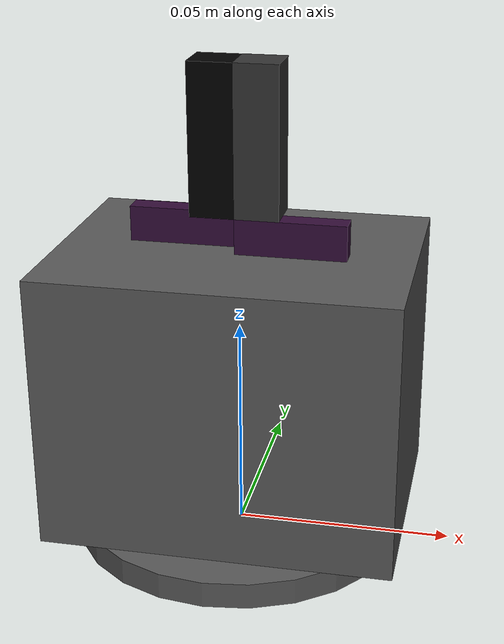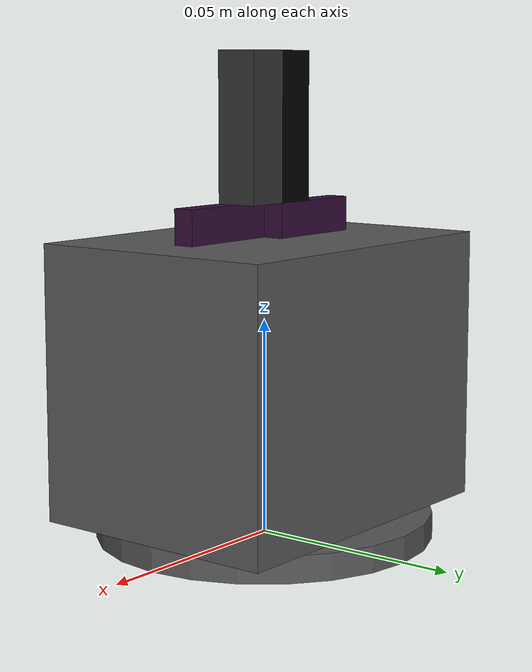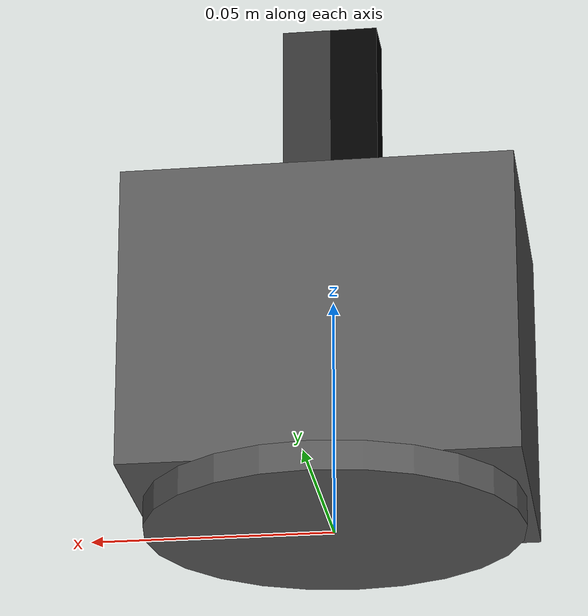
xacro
<?xml version="1.0"?>
<robot xmlns:xacro="http://www.ros.org/wiki/xacro"
       name="gripper" >
  <!-- Include all igus_rebel_6dof macros -->
  <!-- this is designed to be put together inside irc_ros_description packges. change package name as required -->
  <xacro:include filename="$(find irc_ros_description)/urdf/grippers/gripper.urdf" />
  <xacro:include filename="$(find irc_ros_description)/urdf/grippers/gripper.ros2_control.xacro" />
  <xacro:macro name="gripper" params="parent_link hardware_protocol is_ignition">
    <xacro:gripper_controller hardware_protocol="${hardware_protocol}" is_ignition="${is_ignition}" />
    <joint name="gripper_world_base" type="fixed">
      <parent link="flange"/>
      <child link="gripper_base_link"/>
      <origin xyz="0 0 0" rpy="0.0 1.57 0.0"/>
  </joint>
  </xacro:macro>
</robot>

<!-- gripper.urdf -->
<robot name="gripper">
<!-- the orange axis is x axis, yellow is y and cyan is z axis -->
    <material name="body_color">
        <color rgba="0.3451 0.3451 0.3451 1.0"/>
    </material>
    <material name="finger_color">
        <color rgba="0.0 0.0 0.0 1.0"/>
    </material>
    <material name="finger_base_color">
        <color rgba="0.2 0.05098039 0.21960784 1.0"/>
    </material>
    <link name="gripper_base_link">
        <visual>
            <geometry>
                <cylinder radius="0.039" length="0.006"/>
            </geometry>
            <origin rpy = "0 0 0 " xyz="0 0 0.003"/>
            <material name="body_color"/>
        </visual>
        <collision>
            <geometry>
                <cylinder radius="0.039" length="0.006"/>
            </geometry>
            <origin rpy = "0 0 0 " xyz="0 0 0"/>
        </collision>
        <inertial>
            <origin xyz="0.0 0.0 0.0" rpy="0.0 0.0 0.0"/>
            <mass value="0.04"/>
            <inertia ixx="1.533e-05" ixy="0.0" ixz="0.0" iyy="1.533e-05" iyz="0.0" izz="3.042e-05"/>
        </inertial>
    </link>

    <joint name="gripper_base" type="fixed">
        <parent link="gripper_base_link"/>
        <child link="gripper_first_link"/>
        <origin xyz="0 0 0.006"/>
        <axis xyz="0 0 0"/>
        <limit lower="-1.2" upper="1.2" effort="300" velocity="2.0"/>
    </joint>

    <link name="gripper_first_link">
        <visual>
            <geometry>
                <box size="0.08 0.06 0.063"/>
            </geometry>
            <origin rpy="0 0 0" xyz="0 0 0.0315"/>
            <material name="body_color"/>
        </visual>
        <collision>
            <geometry>
                <box size="0.08 0.06 0.069"/>
            </geometry>
            <origin rpy="0 0 0" xyz="0 0 0.0345"/>
        </collision>
        <inertial>
            <origin xyz="0.0 0.0 0.0" rpy="0.0 0.0 0.0"/>
            <mass value="0.32"/>
            <inertia ixx="0.0002765066666666667" ixy="0.0" ixz="0.0" iyy="0.00020184" iyz="0.0" izz="0.0002666666666666667"/>
        </inertial>
    </link>

    <joint name="right_finger_base_joint" type="prismatic">
        <parent link="gripper_first_link"/>
        <child link="right_finger_base"/>
        <origin xyz="0 0 0.063"/>
        <axis xyz="1 0 0"/>
        <limit lower="0.0" upper="0.03" effort="300" velocity="2.0"/>
    </joint>

    <joint name="left_finger_base_joint" type="prismatic">
        <mimic joint="right_finger_base_joint" multiplier="1" offset="0"/>
        <parent link="gripper_first_link"/>
        <child link="left_finger_base"/>
        <origin xyz="0.0 0.0 0.063"/>
        <axis xyz="-1 0 0"/>
        <limit lower="0.0" upper="0.03" effort="300" velocity="2.0"/>
    </joint>

    <link name="right_finger_base">
        <visual>
            <geometry>
                <box size="0.025 0.005 0.008"/>
            </geometry>
            <origin rpy="0 0 0" xyz="-0.0125 0.0025 0.004"/>
            <material name="finger_base_color"/>
        </visual>
        <collision>
            <geometry>
                <box size="0.025 0.005 0.008"/>
            </geometry>
            <origin rpy="0 0 0" xyz="-0.0125 0.0025 0.004"/>
        </collision>
        <inertial>
            <origin xyz="0.0 0.0 0.0" rpy="0.0 0.0 0.0"/>
            <mass value="0.005"/>
            <inertia ixx="2.870833333333334e-07" ixy="0.0" ixz="0.0" iyy="3.708333333333333e-08" iyz="0.0" izz="2.7083333333333337e-07"/>
        </inertial>
    </link>

    <link name="left_finger_base">
        <visual>
            <geometry>
                <box size="0.025 0.005 0.008"/>
            </geometry>
            <origin rpy="0 0 0" xyz="0.0125 -0.0025 0.004"/>
            <material name="finger_base_color"/>
        </visual>
        <collision>
            <geometry>
                <box size="0.025 0.005  0.008"/>
            </geometry>
            <origin rpy="0 0 0" xyz="0.0125 -0.0025 0.004"/>
        </collision>
        <inertial>
            <origin xyz="0.0 0.0 0.0" rpy="0.0 0.0 0.0"/>
            <mass value="0.005"/>
            <inertia ixx="2.870833333333334e-07" ixy="0.0" ixz="0.0" iyy="3.708333333333333e-08" iyz="0.0" izz="2.7083333333333337e-07"/>
        </inertial>
    </link>
    <!-- might need to modify the axis of translation -->
    <joint name="right_finger_joint" type="fixed">
        <parent link="right_finger_base"/>
        <child link="right_finger"/>
        <origin rpy="0 0 0" xyz="0 0 0.008"/>
        <axis xyz="0 0 0"/>
    </joint>

    <joint name="left_finger_joint" type="fixed">
        <parent link="left_finger_base"/>
        <child link="left_finger"/>
        <origin rpy="0 0 0" xyz="0 0 0.008"/>
        <axis xyz="0 0 0"/>
    </joint>

    <link name="right_finger">
        <visual>
            <geometry>
                <box size="0.01 0.01 0.034"/>
            </geometry>
            <origin rpy="0 0 0" xyz="0.005 0 0.0170"/>
            <material name="right_finger_color">
                <color rgba="0.2 0.2 0.2 1.0"/>
            </material>
        </visual>
        <collision>
            <geometry>
                <box size="0.01 0.01 0.034"/>
            </geometry>
            <origin rpy="0 0 0" xyz="0.005 0 0.0170"/>
        </collision>
        <inertial>
            <origin xyz="0.0 0.0 0.0" rpy="0.0 0.0 0.0"/>
            <mass value="0.015"/>
            <inertia ixx="1.5700000000000002e-06" ixy="0.0" ixz="0.0" iyy="1.5700000000000002e-06" iyz="0.0" izz="2.5e-07"/>
        </inertial>
    </link>

    <link name="left_finger">
        <visual>
            <geometry>
                <box size="0.01 0.01 0.034"/>
            </geometry>
            <origin rpy="0 0 0" xyz="-0.005  0 0.0170"/>
            <material name="finger_color"/>
        </visual>
        <collision>
            <geometry>
                <box size="0.01 0.01 0.034"/>
            </geometry>
            <origin rpy="0 0 0" xyz="-0.005  0 0.0170"/>
        </collision>
        <inertial>
            <origin xyz="0.0 0.0 0.0" rpy="0.0 0.0 0.0"/>
            <mass value="0.015"/>
            <inertia ixx="1.5700000000000002e-06" ixy="0.0" ixz="0.0" iyy="1.5700000000000002e-06" iyz="0.0" izz="2.5e-07"/>
        </inertial>
    </link>

</robot>
